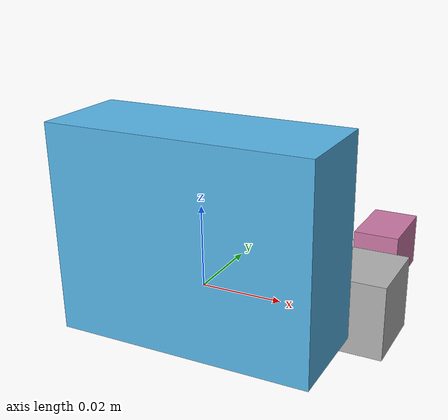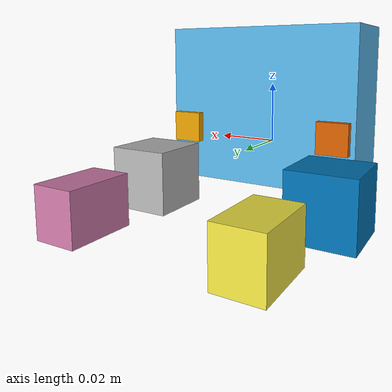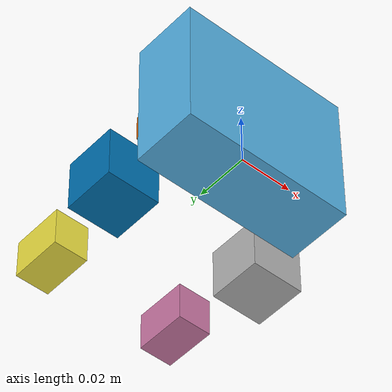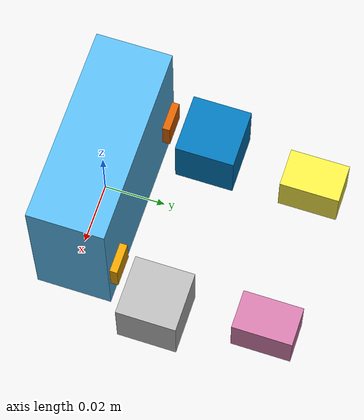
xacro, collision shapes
<?xml version="1.0"?>
<robot name="adaptive_gripper" xmlns:xacro="http://www.ros.org/wiki/xacro">
  <xacro:include filename="$(find robot_description)/urdf/adaptive_gripper/adaptive_gripper.urdf.xacro"/>

  <link name="base_link" />
  <xacro:adaptive_gripper parent="base_link" prefix="">
    <origin xyz="0 0 0" rpy="0 0 0"/>
  </xacro:adaptive_gripper>
</robot>

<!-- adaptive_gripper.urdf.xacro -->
<robot xmlns:xacro="http://www.ros.org/wiki/xacro">

  <xacro:property name="joint_effort" value="56.0"/>
  <xacro:property name="joint_velocity" value="2.792527"/>
  <xacro:property name="joint_damping" value="0.0"/>
  <xacro:property name="joint_friction" value="0.0"/>

  <xacro:property name="gripper_link_mass" value="0.007"/>
  <xacro:property name="gripper_link_ixx" value="1e-6"/>
  <xacro:property name="gripper_link_iyy" value="1e-6"/>
  <xacro:property name="gripper_link_izz" value="1e-6"/>

  <xacro:macro name="gripper_link_inertial">
    <inertial>
      <origin xyz="0 0 0.0" rpy="0 0 0"/>
      <mass value="${gripper_link_mass}"/>
      <inertia
        ixx="${gripper_link_ixx}" ixy="0.0" ixz="0.0"
        iyy="${gripper_link_iyy}" iyz="0.0"
        izz="${gripper_link_izz}"/>
    </inertial>
  </xacro:macro>

  <xacro:macro name="adaptive_gripper" params="parent prefix *origin">

    <link name="${prefix}gripper_base">
      <inertial>
        <origin xyz="0 0 0.0" rpy="0 0 0"/>
        <mass value="0.07"/>
        <inertia
          ixx="0.000010725" ixy="0.0" ixz="0.0"
          iyy="0.000014392" iyz="0.0"
          izz="0.000018517"/>
      </inertial>
      <visual>
        <geometry>
          <mesh filename="file://$(find robot_description)/meshes/adaptive_gripper/gripper_base.dae"/>
        </geometry>
        <origin xyz="0.0 0.0 -0.012" rpy="0 0 0"/>
      </visual>
      <collision>
        <geometry>
          <box size="0.065 0.025 0.052"/> // original 0.065 0.025 0.025
        </geometry>
        <origin xyz="0.0 0.0 0.013" rpy="0 0 0"/>
      </collision>
    </link>

    <joint name="${prefix}${parent}_to_${prefix}gripper_base" type="fixed">
      <parent link="${prefix}${parent}"/>
      <child link="${prefix}gripper_base"/>
      <xacro:insert_block name="origin"/>
    </joint>

    <link name="${prefix}gripper_mount"/>

    <joint name="${prefix}gripper_base_to_${prefix}gripper_mount" type="fixed">
      <parent link="${prefix}gripper_base"/>
      <child link="${prefix}gripper_mount"/>
      <origin xyz="0 -0.00781613 -0.012" rpy="0 0 0"/> // Guess - needs fine tuning
    </joint>

    <link name="${prefix}gripper_left1">
      <xacro:gripper_link_inertial/>
      <visual>
        <geometry>
          <mesh filename="file://$(find robot_description)/meshes/adaptive_gripper/gripper_left1.dae"/>
        </geometry>
        <origin xyz="0.039 -0.0133 -0.012" rpy="0 0 0"/>
      </visual>
      <collision>
        <geometry>
          <box size="0.013 0.02 0.015"/>
        </geometry>
        <origin xyz="0.013 0.042 -0.010" rpy="0 0 0"/>
      </collision>
    </link>

    <link name="${prefix}gripper_left2">
      <xacro:gripper_link_inertial/>
      <visual>
        <geometry>
          <mesh filename="file://$(find robot_description)/meshes/adaptive_gripper/gripper_left2.dae"/>
        </geometry>
        <origin xyz="0.005 -0.0195 -0.012" rpy="0 0 0"/>
      </visual>
      <collision>
        <geometry>
          <box size="0.02 0.02 0.02"/>
        </geometry>
        <origin xyz="-0.025 0.0 -0.010" rpy="0 0 0"/>
      </collision>
    </link>

    <link name="${prefix}gripper_left3">
      <xacro:gripper_link_inertial/>
      <visual>
        <geometry>
          <mesh filename="file://$(find robot_description)/meshes/adaptive_gripper/gripper_left3.dae"/>
        </geometry>
        <origin xyz="0.012 0.0025 -0.012" rpy="0 0 0"/>
      </visual>
      <collision>
        <geometry>
          <box size="0.01 0.01 0.01"/>
        </geometry>
        <origin xyz="-0.014 0.005 0.005" rpy="0 0 0"/>
      </collision>
    </link>

    <link name="${prefix}gripper_right1">
      <xacro:gripper_link_inertial/>
      <visual>
        <geometry>
          <mesh filename="file://$(find robot_description)/meshes/adaptive_gripper/gripper_right1.dae"/>
        </geometry>
        <origin xyz="-0.039 -0.0133 -0.012" rpy="0 0 0"/>
      </visual>
      <collision>
        <geometry>
          <box size="0.013 0.02 0.015"/>
        </geometry>
        <origin xyz="-0.013 0.042 -0.010" rpy="0 0 0"/>
      </collision>
    </link>

    <link name="${prefix}gripper_right2">
      <xacro:gripper_link_inertial/>
      <visual>
        <geometry>
          <mesh filename="file://$(find robot_description)/meshes/adaptive_gripper/gripper_right2.dae"/>
        </geometry>
        <origin xyz="-0.005 -0.0195 -0.012" rpy="0 0 0"/>
      </visual>
      <collision>
        <geometry>
          <box size="0.02 0.02 0.02"/>
        </geometry>
        <origin xyz="0.025 0.0 -0.010" rpy="0 0 0"/>
      </collision>
    </link>

    <link name="${prefix}gripper_right3">
      <xacro:gripper_link_inertial/>
      <visual>
        <geometry>
          <mesh filename="file://$(find robot_description)/meshes/adaptive_gripper/gripper_right3.dae"/>
        </geometry>
        <origin xyz="-0.012 0.0025 -0.012" rpy="0 0 0"/>
      </visual>
      <collision>
        <geometry>
          <box size="0.01 0.01 0.01"/>
        </geometry>
        <origin xyz="0.014 0.005 0.005" rpy="0 0 0"/>
      </collision>
    </link>

    <joint name="${prefix}gripper_controller" type="revolute">
      <axis xyz="0 0 1"/>
      <limit effort="${joint_effort}" lower="-0.7" upper="0.15" velocity="${joint_velocity}"/>
      <parent link="${prefix}gripper_base"/>
      <child link="${prefix}gripper_left3"/>
      <origin xyz="-0.012 0.005 0" rpy="0 0 0"/>
      <dynamics damping="${joint_damping}" friction="${joint_friction}"/>
    </joint>

    <joint name="${prefix}gripper_base_to_${prefix}gripper_left2" type="revolute">
      <axis xyz="0 0 1"/>
      <limit effort="${joint_effort}" lower="-0.8" upper="0.5" velocity="${joint_velocity}"/>
      <parent link="${prefix}gripper_base"/>
      <child link="${prefix}gripper_left2"/>
      <origin xyz="-0.005 0.027 0" rpy="0 0 0"/>
      <mimic joint="${prefix}gripper_controller" multiplier="1.0" offset="0"/>
      <dynamics damping="${joint_damping}" friction="${joint_friction}"/>
    </joint>

    <joint name="${prefix}gripper_left3_to_${prefix}gripper_left1" type="revolute">
      <axis xyz="0 0 1"/>
      <limit effort="${joint_effort}" lower="-0.65" upper="0.65" velocity="${joint_velocity}"/>
      <parent link="${prefix}gripper_left3"/>
      <child link="${prefix}gripper_left1"/>
      <origin xyz="-0.027 0.016 0" rpy="0 0 0"/>
      <mimic joint="${prefix}gripper_controller" multiplier="-1.0" offset="0"/>
      <dynamics damping="${joint_damping}" friction="${joint_friction}"/>
    </joint>

    <joint name="${prefix}gripper_base_to_${prefix}gripper_right3" type="revolute">
      <axis xyz="0 0 1"/>
      <limit effort="${joint_effort}" lower="-0.15" upper="0.7" velocity="${joint_velocity}"/>
      <parent link="${prefix}gripper_base"/>
      <child link="${prefix}gripper_right3"/>
      <origin xyz="0.012 0.005 0" rpy="0 0 0"/>
      <mimic joint="${prefix}gripper_controller" multiplier="-1.0" offset="0"/>
      <dynamics damping="${joint_damping}" friction="${joint_friction}"/>
    </joint>

    <joint name="${prefix}gripper_base_to_${prefix}gripper_right2" type="revolute">
      <axis xyz="0 0 1"/>
      <limit effort="${joint_effort}" lower="-0.5" upper="0.8" velocity="${joint_velocity}"/>
      <parent link="${prefix}gripper_base"/>
      <child link="${prefix}gripper_right2"/>
      <origin xyz="0.005 0.027 0" rpy="0 0 0"/>
      <mimic joint="${prefix}gripper_controller" multiplier="-1.0" offset="0"/>
      <dynamics damping="${joint_damping}" friction="${joint_friction}"/>
    </joint>

    <joint name="${prefix}gripper_right3_to_${prefix}gripper_right1" type="revolute">
      <axis xyz="0 0 1"/>
      <limit effort="${joint_effort}" lower="-0.65" upper="0.65" velocity="${joint_velocity}"/>
      <parent link="${prefix}gripper_right3"/>
      <child link="${prefix}gripper_right1"/>
      <origin xyz="0.027 0.016 0" rpy="0 0 0"/>
      <mimic joint="${prefix}gripper_controller" multiplier="1.0" offset="0"/>
      <dynamics damping="${joint_damping}" friction="${joint_friction}"/>
    </joint>

    <gazebo reference="${prefix}gripper_base">
      <visual>
        <material>
          <ambient>1 1 1 1</ambient>
          <diffuse>1 1 1 1</diffuse>
          <specular>1 1 1 1</specular>
        </material>
      </visual>
    </gazebo>

  </xacro:macro>
</robot>
